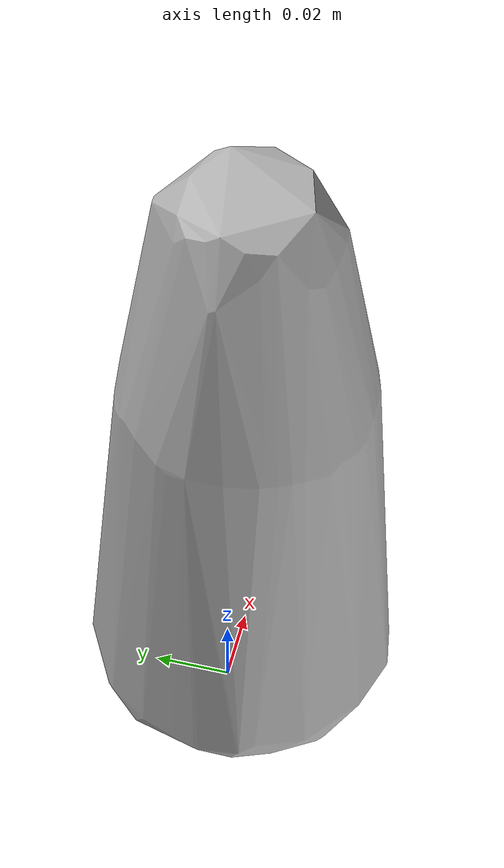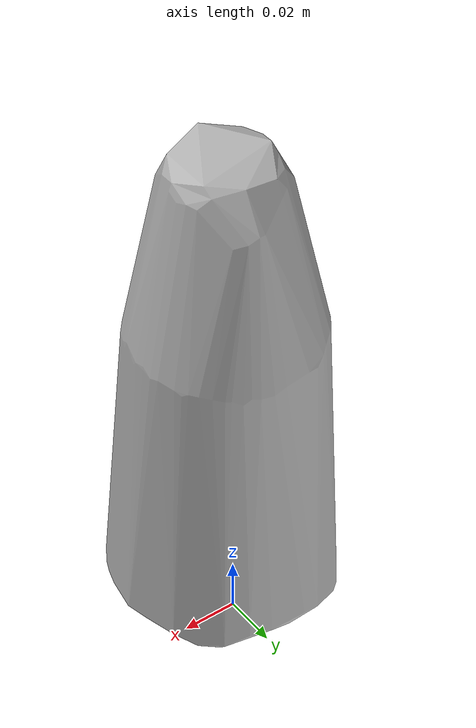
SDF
<?xml version='1.0'?>
<sdf version="1.4">
  <model name="bai5_sumatra_dragonfruit">
    <static>false</static>
    <link name="link">
      <inertial>
        <pose>-0.0004060963814017835 -0.005312204769192774 0.0920611275885864 0.0032760083678429522 0.005947042232344615 -1.61926823178299</pose>
        <mass>0.06578220805355957</mass>
        <inertia>
          <ixx>0.00017656487861288732</ixx>
          <ixy>-2.001137388398678e-21</ixy>
          <ixz>-8.381849276973e-20</ixz>
          <iyy>0.00017628050125938186</iyy>
          <iyz>-2.7379276517082208e-21</iyz>
          <izz>4.091579083660818e-05</izz>
        </inertia>
      </inertial>
      <collision name="collision">
        <geometry>
          <mesh>
            <!-- Use a downsampled mesh for collisions -->
            <uri>model:///bai5_sumatra_dragonfruit/bai5_sumatra_dragonfruit_250_collision.obj</uri>
	        </mesh>
        </geometry>
        <surface>
      </surface>
      </collision>
      <visual name="visual">
        <geometry>
          <mesh>
            <uri>model:///bai5_sumatra_dragonfruit/optimized_tsdf_texture_mapped_mesh.obj</uri>
	        </mesh>
        </geometry>
        <material>
          <script>
            <uri>model:///bai5_sumatra_dragonfruit/bai5_sumatra_dragonfruit.material</uri>
            <name>bai5_sumatra_dragonfruit</name>
          </script>
        </material>
      </visual>
    </link>
  </model>
</sdf>
